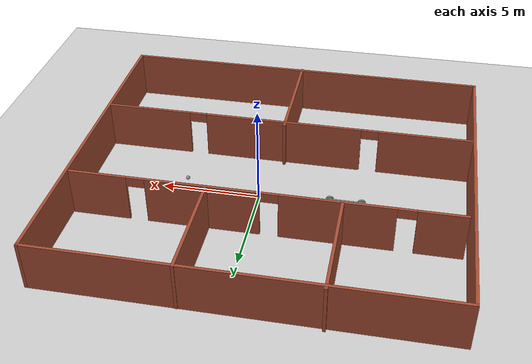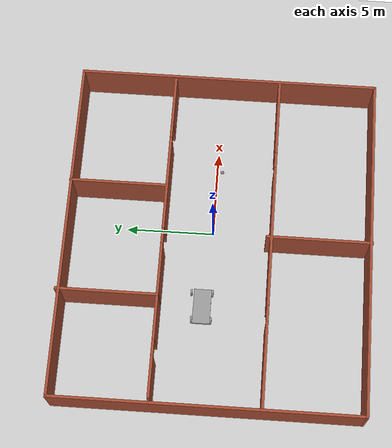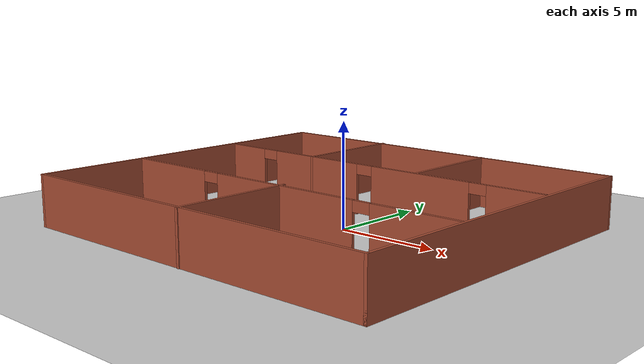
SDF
<sdf version="1.6">
 <world name="default">
  <plugin name="hello" filename="libhello.so"/>
  <light name="sun" type="directional">
   <pose>0 0 10 0 -0 0</pose>
   <diffuse>0.8 0.8 0.8 1</diffuse>
   <specular>0.2 0.2 0.2 1</specular>
   <attenuation>
    <range>1000</range>
    <constant>0.9</constant>
    <linear>0.01</linear>
    <quadratic>0.001</quadratic>
   </attenuation>
   <direction>-0.5 0.1 -0.9</direction>
  </light>
  <model name="ground_plane">
   <static>1</static>
   <link name="link">
    <collision name="collision">
     <geometry><plane><normal>0 0 1</normal><size>100 100</size></plane></geometry>
     <surface>
      <contact><collide_bitmask>65535</collide_bitmask></contact>
      <friction><ode><mu>100</mu><mu2>50</mu2></ode></friction>
     </surface>
    </collision>
    <visual name="visual">
     <cast_shadows>0</cast_shadows>
     <geometry><plane><normal>0 0 1</normal><size>100 100</size></plane></geometry>
     <material>
      <script><uri>file://media/materials/scripts/gazebo.material</uri><name>Gazebo/Grey</name></script>
     </material>
    </visual>
   </link>
  </model>
  <gravity>0 0 -9.8</gravity>
  <magnetic_field>6e-06 2.3e-05 -4.2e-05</magnetic_field>
  <atmosphere type="adiabatic"/>
  <physics name="default_physics" default="0" type="ode">
   <max_step_size>0.001</max_step_size>
   <real_time_factor>1</real_time_factor>
   <real_time_update_rate>1000</real_time_update_rate>
  </physics>
  <scene><ambient>0.4 0.4 0.4 1</ambient><background>0.7 0.7 0.7 1</background><shadows>1</shadows></scene>
  <spherical_coordinates>
   <surface_model>EARTH_WGS84</surface_model>
   <latitude_deg>0</latitude_deg>
   <longitude_deg>0</longitude_deg>
   <elevation>0</elevation>
   <heading_deg>0</heading_deg>
  </spherical_coordinates>
  <model name="Building">
   <pose>-0.815891 -0.27075 0 0 -0 0</pose>
   <link name="Wall_11">
    <collision name="Wall_11_Collision">
     <geometry><box><size>19.5 0.15 2.5</size></box></geometry>
     <pose>0 0 1.25 0 -0 0</pose>
    </collision>
    <visual name="Wall_11_Visual">
     <pose>0 0 1.25 0 -0 0</pose>
     <geometry><box><size>19.5 0.15 2.5</size></box></geometry>
     <material>
      <script><uri>file://media/materials/scripts/gazebo.material</uri><name>Gazebo/Bricks</name></script>
      <ambient>1 1 1 1</ambient>
     </material>
     <meta><layer>0</layer></meta>
    </visual>
    <pose>0 8.49662 0 0 -0 3.14159</pose>
   </link>
   <link name="Wall_14">
    <collision name="Wall_14_Collision">
     <geometry><box><size>17.25 0.15 2.5</size></box></geometry>
     <pose>0 0 1.25 0 -0 0</pose>
    </collision>
    <visual name="Wall_14_Visual">
     <pose>0 0 1.25 0 -0 0</pose>
     <geometry><box><size>17.25 0.15 2.5</size></box></geometry>
     <material>
      <script><uri>file://media/materials/scripts/gazebo.material</uri><name>Gazebo/Bricks</name></script>
      <ambient>1 1 1 1</ambient>
     </material>
     <meta><layer>0</layer></meta>
    </visual>
    <pose>-9.675 -0.053382 0 0 -0 1.5708</pose>
   </link>
   <link name="Wall_16">
    <pose>0.002951 -3.04368 0 0 -0 0</pose>
    <visual name="Wall_16_Visual_0">
     <pose>-7.22833 0 1.25 0 -0 0</pose>
     <geometry><box><size>4.79334 0.15 2.5</size></box></geometry>
     <material>
      <script><uri>file://media/materials/scripts/gazebo.material</uri><name>Gazebo/Bricks</name></script>
      <ambient>1 1 1 1</ambient>
     </material>
     <meta><layer>0</layer></meta>
    </visual>
    <collision name="Wall_16_Collision_0">
     <geometry><box><size>4.79334 0.15 2.5</size></box></geometry>
     <pose>-7.22833 0 1.25 0 -0 0</pose>
    </collision>
    <visual name="Wall_16_Visual_1">
     <pose>0.171405 0 1.25 0 -0 0</pose>
     <geometry><box><size>8.20613 0.15 2.5</size></box></geometry>
     <material>
      <script><uri>file://media/materials/scripts/gazebo.material</uri><name>Gazebo/Bricks</name></script>
      <ambient>1 1 1 1</ambient>
     </material>
     <meta><layer>0</layer></meta>
    </visual>
    <collision name="Wall_16_Collision_1">
     <geometry><box><size>8.20613 0.15 2.5</size></box></geometry>
     <pose>0.171405 0 1.25 0 -0 0</pose>
    </collision>
    <visual name="Wall_16_Visual_2">
     <pose>7.39973 0 1.25 0 -0 0</pose>
     <geometry><box><size>4.45053 0.15 2.5</size></box></geometry>
     <material>
      <script><uri>file://media/materials/scripts/gazebo.material</uri><name>Gazebo/Bricks</name></script>
      <ambient>1 1 1 1</ambient>
     </material>
     <meta><layer>0</layer></meta>
    </visual>
    <collision name="Wall_16_Collision_2">
     <geometry><box><size>4.45053 0.15 2.5</size></box></geometry>
     <pose>7.39973 0 1.25 0 -0 0</pose>
    </collision>
    <visual name="Wall_16_Visual_3">
     <pose>-4.38166 0 2.25 0 -0 0</pose>
     <geometry><box><size>0.9 0.15 0.5</size></box></geometry>
     <material>
      <script><uri>file://media/materials/scripts/gazebo.material</uri><name>Gazebo/Bricks</name></script>
      <ambient>1 1 1 1</ambient>
     </material>
     <meta><layer>0</layer></meta>
    </visual>
    <collision name="Wall_16_Collision_3">
     <geometry><box><size>0.9 0.15 0.5</size></box></geometry>
     <pose>-4.38166 0 2.25 0 -0 0</pose>
    </collision>
    <visual name="Wall_16_Visual_4">
     <pose>4.72447 0 2.25 0 -0 0</pose>
     <geometry><box><size>0.9 0.15 0.5</size></box></geometry>
     <material>
      <script><uri>file://media/materials/scripts/gazebo.material</uri><name>Gazebo/Bricks</name></script>
      <ambient>1 1 1 1</ambient>
     </material>
     <meta><layer>0</layer></meta>
    </visual>
    <collision name="Wall_16_Collision_4">
     <geometry><box><size>0.9 0.15 0.5</size></box></geometry>
     <pose>4.72447 0 2.25 0 -0 0</pose>
    </collision>
   </link>
   <link name="Wall_18">
    <pose>0.062534 3.04758 0 0 -0 0</pose>
    <visual name="Wall_18_Visual_0">
     <pose>-8.33389 0 1.25 0 -0 0</pose>
     <geometry><box><size>2.33223 0.15 2.5</size></box></geometry>
     <material>
      <script><uri>file://media/materials/scripts/gazebo.material</uri><name>Gazebo/Bricks</name></script>
      <ambient>1 1 1 1</ambient>
     </material>
     <meta><layer>0</layer></meta>
    </visual>
    <collision name="Wall_18_Collision_0">
     <geometry><box><size>2.33223 0.15 2.5</size></box></geometry>
     <pose>-8.33389 0 1.25 0 -0 0</pose>
    </collision>
    <visual name="Wall_18_Visual_1">
     <pose>-3.51832 0 1.25 0 -0 0</pose>
     <geometry><box><size>5.4989 0.15 2.5</size></box></geometry>
     <material>
      <script><uri>file://media/materials/scripts/gazebo.material</uri><name>Gazebo/Bricks</name></script>
      <ambient>1 1 1 1</ambient>
     </material>
     <meta><layer>0</layer></meta>
    </visual>
    <collision name="Wall_18_Collision_1">
     <geometry><box><size>5.4989 0.15 2.5</size></box></geometry>
     <pose>-3.51832 0 1.25 0 -0 0</pose>
    </collision>
    <visual name="Wall_18_Visual_2">
     <pose>2.91134 0 1.25 0 -0 0</pose>
     <geometry><box><size>5.56043 0.15 2.5</size></box></geometry>
     <material>
      <script><uri>file://media/materials/scripts/gazebo.material</uri><name>Gazebo/Bricks</name></script>
      <ambient>1 1 1 1</ambient>
     </material>
     <meta><layer>0</layer></meta>
    </visual>
    <collision name="Wall_18_Collision_2">
     <geometry><box><size>5.56043 0.15 2.5</size></box></geometry>
     <pose>2.91134 0 1.25 0 -0 0</pose>
    </collision>
    <visual name="Wall_18_Visual_3">
     <pose>8.04578 0 1.25 0 -0 0</pose>
     <geometry><box><size>2.90845 0.15 2.5</size></box></geometry>
     <material>
      <script><uri>file://media/materials/scripts/gazebo.material</uri><name>Gazebo/Bricks</name></script>
      <ambient>1 1 1 1</ambient>
     </material>
     <meta><layer>0</layer></meta>
    </visual>
    <collision name="Wall_18_Collision_3">
     <geometry><box><size>2.90845 0.15 2.5</size></box></geometry>
     <pose>8.04578 0 1.25 0 -0 0</pose>
    </collision>
    <visual name="Wall_18_Visual_4">
     <pose>-6.71777 0 2.25 0 -0 0</pose>
     <geometry><box><size>0.9 0.15 0.5</size></box></geometry>
     <material>
      <script><uri>file://media/materials/scripts/gazebo.material</uri><name>Gazebo/Bricks</name></script>
      <ambient>1 1 1 1</ambient>
     </material>
     <meta><layer>0</layer></meta>
    </visual>
    <collision name="Wall_18_Collision_4">
     <geometry><box><size>0.9 0.15 0.5</size></box></geometry>
     <pose>-6.71777 0 2.25 0 -0 0</pose>
    </collision>
    <visual name="Wall_18_Visual_5">
     <pose>-0.318874 0 2.25 0 -0 0</pose>
     <geometry><box><size>0.9 0.15 0.5</size></box></geometry>
     <material>
      <script><uri>file://media/materials/scripts/gazebo.material</uri><name>Gazebo/Bricks</name></script>
      <ambient>1 1 1 1</ambient>
     </material>
     <meta><layer>0</layer></meta>
    </visual>
    <collision name="Wall_18_Collision_5">
     <geometry><box><size>0.9 0.15 0.5</size></box></geometry>
     <pose>-0.318874 0 2.25 0 -0 0</pose>
    </collision>
    <visual name="Wall_18_Visual_6">
     <pose>6.14155 0 2.25 0 -0 0</pose>
     <geometry><box><size>0.9 0.15 0.5</size></box></geometry>
     <material>
      <script><uri>file://media/materials/scripts/gazebo.material</uri><name>Gazebo/Bricks</name></script>
      <ambient>1 1 1 1</ambient>
     </material>
     <meta><layer>0</layer></meta>
    </visual>
    <collision name="Wall_18_Collision_6">
     <geometry><box><size>0.9 0.15 0.5</size></box></geometry>
     <pose>6.14155 0 2.25 0 -0 0</pose>
    </collision>
   </link>
   <link name="Wall_20">
    <collision name="Wall_20_Collision">
     <geometry><box><size>6 0.15 2.5</size></box></geometry>
     <pose>0 0 1.25 0 -0 0</pose>
    </collision>
    <visual name="Wall_20_Visual">
     <pose>0 0 1.25 0 -0 0</pose>
     <geometry><box><size>6 0.15 2.5</size></box></geometry>
     <material>
      <script><uri>file://media/materials/scripts/gazebo.material</uri><name>Gazebo/Bricks</name></script>
      <ambient>1 1 1 1</ambient>
     </material>
     <meta><layer>0</layer></meta>
    </visual>
    <pose>0.0513 -5.72257 0 0 0 -1.5708</pose>
   </link>
   <link name="Wall_24">
    <collision name="Wall_24_Collision">
     <geometry><box><size>5.5 0.15 2.5</size></box></geometry>
     <pose>0 0 1.25 0 -0 0</pose>
    </collision>
    <visual name="Wall_24_Visual">
     <pose>0 0 1.25 0 -0 0</pose>
     <geometry><box><size>5.5 0.15 2.5</size></box></geometry>
     <material>
      <script><uri>file://media/materials/scripts/gazebo.material</uri><name>Gazebo/Bricks</name></script>
      <ambient>1 1 1 1</ambient>
     </material>
     <meta><layer>0</layer></meta>
    </visual>
    <pose>2.75853 5.84563 0 0 -0 1.5708</pose>
   </link>
   <link name="Wall_26">
    <collision name="Wall_26_Collision">
     <geometry><box><size>5.75 0.15 2.5</size></box></geometry>
     <pose>0 0 1.25 0 -0 0</pose>
    </collision>
    <visual name="Wall_26_Visual">
     <pose>0 0 1.25 0 -0 0</pose>
     <geometry><box><size>5.75 0.15 2.5</size></box></geometry>
     <material>
      <script><uri>file://media/materials/scripts/gazebo.material</uri><name>Gazebo/Bricks</name></script>
      <ambient>1 1 1 1</ambient>
     </material>
     <meta><layer>0</layer></meta>
    </visual>
    <pose>-3.7019 5.84757 0 0 -0 1.5708</pose>
   </link>
   <link name="Wall_7">
    <collision name="Wall_7_Collision">
     <geometry><box><size>19.5 0.15 2.5</size></box></geometry>
     <pose>0 0 1.25 0 -0 0</pose>
    </collision>
    <visual name="Wall_7_Visual">
     <pose>0 0 1.25 0 -0 0</pose>
     <geometry><box><size>19.5 0.15 2.5</size></box></geometry>
     <material>
      <script><uri>file://media/materials/scripts/gazebo.material</uri><name>Gazebo/Bricks</name></script>
      <ambient>1 1 1 1</ambient>
     </material>
     <meta><layer>0</layer></meta>
    </visual>
    <pose>0 -8.60338 0 0 -0 0</pose>
   </link>
   <link name="Wall_9">
    <collision name="Wall_9_Collision">
     <geometry><box><size>17.25 0.15 2.5</size></box></geometry>
     <pose>0 0 1.25 0 -0 0</pose>
    </collision>
    <visual name="Wall_9_Visual">
     <pose>0 0 1.25 0 -0 0</pose>
     <geometry><box><size>17.25 0.15 2.5</size></box></geometry>
     <material>
      <script><uri>file://media/materials/scripts/gazebo.material</uri><name>Gazebo/Bricks</name></script>
      <ambient>1 1 1 1</ambient>
     </material>
     <meta><layer>0</layer></meta>
    </visual>
    <pose>9.675 -0.053382 0 0 -0 1.5708</pose>
   </link>
   <static>1</static>
  </model>
  <model name="instance2">
   <link name="link_1">
    <pose>0 -0.018 0 0 -0 0</pose>
    <inertial>
     <mass>1</mass>
     <inertia>
      <ixx>0.166667</ixx>
      <ixy>0</ixy>
      <ixz>0</ixz>
      <iyy>0.166667</iyy>
      <iyz>0</iyz>
      <izz>0.166667</izz>
     </inertia>
    </inertial>
    <visual name="visual">
     <geometry><box><size>2 1 0.2</size></box></geometry>
     <material>
      <lighting>1</lighting>
      <script><uri>file://media/materials/scripts/gazebo.material</uri><name>Gazebo/Grey</name></script>
      <shader type="pixel"><normal_map>__default__</normal_map></shader>
      <ambient>0.3 0.3 0.3 1</ambient>
      <diffuse>0.7 0.7 0.7 1</diffuse>
      <specular>0.01 0.01 0.01 1</specular>
      <emissive>0 0 0 1</emissive>
     </material>
    </visual>
    <collision name="collision">
     <geometry><box><size>2 1 0.2</size></box></geometry>
     <surface>
      <friction>
       <ode><mu>1</mu><mu2>1</mu2><fdir1>0 0 0</fdir1><slip1>0</slip1><slip2>0</slip2></ode>
       <torsional>
        <coefficient>1</coefficient>
        <patch_radius>0</patch_radius>
        <surface_radius>0</surface_radius>
        <use_patch_radius>1</use_patch_radius>
        <ode><slip>0</slip></ode>
       </torsional>
      </friction>
      <bounce><restitution_coefficient>0</restitution_coefficient><threshold>1e+06</threshold></bounce>
      <contact>
       <collide_without_contact>0</collide_without_contact>
       <collide_without_contact_bitmask>1</collide_without_contact_bitmask>
       <collide_bitmask>1</collide_bitmask>
       <ode>
        <soft_cfm>0</soft_cfm>
        <soft_erp>0.2</soft_erp>
        <kp>1e+13</kp>
        <kd>1</kd>
        <max_vel>0.01</max_vel>
        <min_depth>0</min_depth>
       </ode>
       <bullet>
        <split_impulse>1</split_impulse>
        <split_impulse_penetration_threshold>-0.01</split_impulse_penetration_threshold>
        <soft_cfm>0</soft_cfm>
        <soft_erp>0.2</soft_erp>
        <kp>1e+13</kp>
        <kd>1</kd>
       </bullet>
      </contact>
     </surface>
    </collision>
   </link>
   <link name="link_3">
    <pose>0.8 0.622019 0 1.5707 -0 0</pose>
    <inertial>
     <mass>1</mass>
     <inertia><ixx>0.145833</ixx><ixy>0</ixy><ixz>0</ixz><iyy>0.145833</iyy><iyz>0</iyz><izz>0.125</izz></inertia>
    </inertial>
    <visual name="visual">
     <geometry><cylinder><radius>0.2</radius><length>0.1</length></cylinder></geometry>
     <material>
      <lighting>1</lighting>
      <script><uri>file://media/materials/scripts/gazebo.material</uri><name>Gazebo/Grey</name></script>
      <shader type="pixel"><normal_map>__default__</normal_map></shader>
      <ambient>0.3 0.3 0.3 1</ambient>
      <diffuse>0.7 0.7 0.7 1</diffuse>
      <specular>0.01 0.01 0.01 1</specular>
      <emissive>0 0 0 1</emissive>
     </material>
    </visual>
    <collision name="collision">
     <geometry><cylinder><radius>0.2</radius><length>0.1</length></cylinder></geometry>
     <surface>
      <friction>
       <ode><mu>1</mu><mu2>1</mu2><fdir1>0 0 0</fdir1><slip1>0</slip1><slip2>0</slip2></ode>
       <torsional>
        <coefficient>1</coefficient>
        <patch_radius>0</patch_radius>
        <surface_radius>0</surface_radius>
        <use_patch_radius>1</use_patch_radius>
        <ode><slip>0</slip></ode>
       </torsional>
      </friction>
      <bounce><restitution_coefficient>0</restitution_coefficient><threshold>1e+06</threshold></bounce>
      <contact>
       <collide_without_contact>0</collide_without_contact>
       <collide_without_contact_bitmask>1</collide_without_contact_bitmask>
       <collide_bitmask>1</collide_bitmask>
       <ode>
        <soft_cfm>0</soft_cfm>
        <soft_erp>0.2</soft_erp>
        <kp>1e+13</kp>
        <kd>1</kd>
        <max_vel>0.01</max_vel>
        <min_depth>0</min_depth>
       </ode>
       <bullet>
        <split_impulse>1</split_impulse>
        <split_impulse_penetration_threshold>-0.01</split_impulse_penetration_threshold>
        <soft_cfm>0</soft_cfm>
        <soft_erp>0.2</soft_erp>
        <kp>1e+13</kp>
        <kd>1</kd>
       </bullet>
      </contact>
     </surface>
    </collision>
   </link>
   <link name="link_3_clone">
    <pose>0.8 -0.568019 0 1.5707 -0 0</pose>
    <inertial>
     <mass>1</mass>
     <inertia><ixx>0.145833</ixx><ixy>0</ixy><ixz>0</ixz><iyy>0.145833</iyy><iyz>0</iyz><izz>0.125</izz></inertia>
    </inertial>
    <visual name="visual">
     <geometry><cylinder><radius>0.2</radius><length>0.1</length></cylinder></geometry>
     <material>
      <lighting>1</lighting>
      <script><uri>file://media/materials/scripts/gazebo.material</uri><name>Gazebo/Grey</name></script>
      <shader type="pixel"><normal_map>__default__</normal_map></shader>
      <ambient>0.3 0.3 0.3 1</ambient>
      <diffuse>0.7 0.7 0.7 1</diffuse>
      <specular>0.01 0.01 0.01 1</specular>
      <emissive>0 0 0 1</emissive>
     </material>
    </visual>
    <collision name="collision">
     <geometry><cylinder><radius>0.2</radius><length>0.1</length></cylinder></geometry>
     <surface>
      <friction>
       <ode><mu>1</mu><mu2>1</mu2><fdir1>0 0 0</fdir1><slip1>0</slip1><slip2>0</slip2></ode>
       <torsional>
        <coefficient>1</coefficient>
        <patch_radius>0</patch_radius>
        <surface_radius>0</surface_radius>
        <use_patch_radius>1</use_patch_radius>
        <ode><slip>0</slip></ode>
       </torsional>
      </friction>
      <bounce><restitution_coefficient>0</restitution_coefficient><threshold>1e+06</threshold></bounce>
      <contact>
       <collide_without_contact>0</collide_without_contact>
       <collide_without_contact_bitmask>1</collide_without_contact_bitmask>
       <collide_bitmask>1</collide_bitmask>
       <ode>
        <soft_cfm>0</soft_cfm>
        <soft_erp>0.2</soft_erp>
        <kp>1e+13</kp>
        <kd>1</kd>
        <max_vel>0.01</max_vel>
        <min_depth>0</min_depth>
       </ode>
       <bullet>
        <split_impulse>1</split_impulse>
        <split_impulse_penetration_threshold>-0.01</split_impulse_penetration_threshold>
        <soft_cfm>0</soft_cfm>
        <soft_erp>0.2</soft_erp>
        <kp>1e+13</kp>
        <kd>1</kd>
       </bullet>
      </contact>
     </surface>
    </collision>
   </link>
   <link name="link_3_clone_0">
    <pose>-0.8 0.532019 0 1.5707 -0 0</pose>
    <inertial>
     <mass>1</mass>
     <inertia><ixx>0.145833</ixx><ixy>0</ixy><ixz>0</ixz><iyy>0.145833</iyy><iyz>0</iyz><izz>0.125</izz></inertia>
    </inertial>
    <visual name="visual">
     <geometry><cylinder><radius>0.2</radius><length>0.1</length></cylinder></geometry>
     <material>
      <lighting>1</lighting>
      <script><uri>file://media/materials/scripts/gazebo.material</uri><name>Gazebo/Grey</name></script>
      <shader type="pixel"><normal_map>__default__</normal_map></shader>
      <ambient>0.3 0.3 0.3 1</ambient>
      <diffuse>0.7 0.7 0.7 1</diffuse>
      <specular>0.01 0.01 0.01 1</specular>
      <emissive>0 0 0 1</emissive>
     </material>
    </visual>
    <collision name="collision">
     <geometry><cylinder><radius>0.2</radius><length>0.1</length></cylinder></geometry>
     <surface>
      <friction>
       <ode><mu>1</mu><mu2>1</mu2><fdir1>0 0 0</fdir1><slip1>0</slip1><slip2>0</slip2></ode>
       <torsional>
        <coefficient>1</coefficient>
        <patch_radius>0</patch_radius>
        <surface_radius>0</surface_radius>
        <use_patch_radius>1</use_patch_radius>
        <ode><slip>0</slip></ode>
       </torsional>
      </friction>
      <bounce><restitution_coefficient>0</restitution_coefficient><threshold>1e+06</threshold></bounce>
      <contact>
       <collide_without_contact>0</collide_without_contact>
       <collide_without_contact_bitmask>1</collide_without_contact_bitmask>
       <collide_bitmask>1</collide_bitmask>
       <ode>
        <soft_cfm>0</soft_cfm>
        <soft_erp>0.2</soft_erp>
        <kp>1e+13</kp>
        <kd>1</kd>
        <max_vel>0.01</max_vel>
        <min_depth>0</min_depth>
       </ode>
       <bullet>
        <split_impulse>1</split_impulse>
        <split_impulse_penetration_threshold>-0.01</split_impulse_penetration_threshold>
        <soft_cfm>0</soft_cfm>
        <soft_erp>0.2</soft_erp>
        <kp>1e+13</kp>
        <kd>1</kd>
       </bullet>
      </contact>
     </surface>
    </collision>
   </link>
   <link name="link_3_clone_1">
    <pose>-0.8 -0.568019 0 1.5707 -0 0</pose>
    <inertial>
     <mass>1</mass>
     <inertia><ixx>0.145833</ixx><ixy>0</ixy><ixz>0</ixz><iyy>0.145833</iyy><iyz>0</iyz><izz>0.125</izz></inertia>
    </inertial>
    <visual name="visual">
     <geometry><cylinder><radius>0.2</radius><length>0.1</length></cylinder></geometry>
     <material>
      <lighting>1</lighting>
      <script><uri>file://media/materials/scripts/gazebo.material</uri><name>Gazebo/Grey</name></script>
      <shader type="pixel"><normal_map>__default__</normal_map></shader>
      <ambient>0.3 0.3 0.3 1</ambient>
      <diffuse>0.7 0.7 0.7 1</diffuse>
      <specular>0.01 0.01 0.01 1</specular>
      <emissive>0 0 0 1</emissive>
     </material>
    </visual>
    <collision name="collision">
     <geometry><cylinder><radius>0.2</radius><length>0.1</length></cylinder></geometry>
     <surface>
      <friction>
       <ode><mu>1</mu><mu2>1</mu2><fdir1>0 0 0</fdir1><slip1>0</slip1><slip2>0</slip2></ode>
       <torsional>
        <coefficient>1</coefficient>
        <patch_radius>0</patch_radius>
        <surface_radius>0</surface_radius>
        <use_patch_radius>1</use_patch_radius>
        <ode><slip>0</slip></ode>
       </torsional>
      </friction>
      <bounce><restitution_coefficient>0</restitution_coefficient><threshold>1e+06</threshold></bounce>
      <contact>
       <collide_without_contact>0</collide_without_contact>
       <collide_without_contact_bitmask>1</collide_without_contact_bitmask>
       <collide_bitmask>1</collide_bitmask>
       <ode>
        <soft_cfm>0</soft_cfm>
        <soft_erp>0.2</soft_erp>
        <kp>1e+13</kp>
        <kd>1</kd>
        <max_vel>0.01</max_vel>
        <min_depth>0</min_depth>
       </ode>
       <bullet>
        <split_impulse>1</split_impulse>
        <split_impulse_penetration_threshold>-0.01</split_impulse_penetration_threshold>
        <soft_cfm>0</soft_cfm>
        <soft_erp>0.2</soft_erp>
        <kp>1e+13</kp>
        <kd>1</kd>
       </bullet>
      </contact>
     </surface>
    </collision>
   </link>
   <joint name="link_1_JOINT_0" type="revolute">
    <parent>link_1</parent>
    <child>link_3_clone_1</child>
    <axis>
     <xyz>0 0 1</xyz>
     <use_parent_model_frame>0</use_parent_model_frame>
     <limit>
      <lower>-1.79769e+308</lower>
      <upper>1.79769e+308</upper>
      <effort>-1</effort>
      <velocity>-1</velocity>
     </limit>
     <dynamics>
      <spring_reference>0</spring_reference>
      <spring_stiffness>0</spring_stiffness>
      <damping>0</damping>
     </dynamics>
    </axis>
    <physics>
     <ode><limit><cfm>0</cfm><erp>0.2</erp></limit><suspension><cfm>0</cfm><erp>0.2</erp></suspension></ode>
    </physics>
   </joint>
   <joint name="link_1_JOINT_1" type="revolute">
    <parent>link_1</parent>
    <child>link_3_clone_0</child>
    <axis>
     <xyz>0 0 1</xyz>
     <use_parent_model_frame>0</use_parent_model_frame>
     <limit>
      <lower>-1.79769e+308</lower>
      <upper>1.79769e+308</upper>
      <effort>-1</effort>
      <velocity>-1</velocity>
     </limit>
     <dynamics>
      <spring_reference>0</spring_reference>
      <spring_stiffness>0</spring_stiffness>
      <damping>0</damping>
     </dynamics>
    </axis>
    <physics>
     <ode><limit><cfm>0</cfm><erp>0.2</erp></limit><suspension><cfm>0</cfm><erp>0.2</erp></suspension></ode>
    </physics>
   </joint>
   <joint name="link_1_JOINT_2" type="revolute">
    <parent>link_1</parent>
    <child>link_3</child>
    <axis>
     <xyz>0 0 1</xyz>
     <use_parent_model_frame>0</use_parent_model_frame>
     <limit>
      <lower>-1.79769e+308</lower>
      <upper>1.79769e+308</upper>
      <effort>-1</effort>
      <velocity>-1</velocity>
     </limit>
     <dynamics>
      <spring_reference>0</spring_reference>
      <spring_stiffness>0</spring_stiffness>
      <damping>0</damping>
     </dynamics>
    </axis>
    <physics>
     <ode><limit><cfm>0</cfm><erp>0.2</erp></limit><suspension><cfm>0</cfm><erp>0.2</erp></suspension></ode>
    </physics>
   </joint>
   <joint name="link_1_JOINT_3" type="revolute">
    <parent>link_1</parent>
    <child>link_3_clone</child>
    <axis>
     <xyz>0 0 1</xyz>
     <use_parent_model_frame>0</use_parent_model_frame>
     <limit>
      <lower>-1.79769e+308</lower>
      <upper>1.79769e+308</upper>
      <effort>-1</effort>
      <velocity>-1</velocity>
     </limit>
     <dynamics>
      <spring_reference>0</spring_reference>
      <spring_stiffness>0</spring_stiffness>
      <damping>0</damping>
     </dynamics>
    </axis>
    <physics>
     <ode><limit><cfm>0</cfm><erp>0.2</erp></limit><suspension><cfm>0</cfm><erp>0.2</erp></suspension></ode>
    </physics>
   </joint>
   <static>0</static>
   <pose>-4.41646 0.378684 0.200005 1e-06 -0 -0.002397</pose>
  </model>
  <model name="balll">
   <link name="link_0">
    <inertial>
     <mass>1</mass>
     <inertia><ixx>0.1</ixx><ixy>0</ixy><ixz>0</ixz><iyy>0.1</iyy><iyz>0</iyz><izz>0.1</izz></inertia>
     <pose>0 0 0.1 0 -0 0</pose>
    </inertial>
    <visual name="visual">
     <geometry><sphere><radius>0.1</radius></sphere></geometry>
     <material>
      <lighting>1</lighting>
      <script><uri>file://media/materials/scripts/gazebo.material</uri><name>Gazebo/Grey</name></script>
      <shader type="pixel"><normal_map>__default__</normal_map></shader>
      <ambient>1 1 1 1</ambient>
      <diffuse>1 1 1 1</diffuse>
      <specular>1 1 1 1</specular>
      <emissive>0 0 0 1</emissive>
     </material>
    </visual>
    <collision name="collision">
     <geometry><sphere><radius>0.1</radius></sphere></geometry>
     <surface>
      <friction>
       <ode><mu>1</mu><mu2>1</mu2><fdir1>0 0 0</fdir1><slip1>0</slip1><slip2>0</slip2></ode>
       <torsional>
        <coefficient>1</coefficient>
        <patch_radius>0</patch_radius>
        <surface_radius>0</surface_radius>
        <use_patch_radius>1</use_patch_radius>
        <ode><slip>0</slip></ode>
       </torsional>
      </friction>
      <bounce><restitution_coefficient>0</restitution_coefficient><threshold>1e+06</threshold></bounce>
      <contact>
       <collide_without_contact>0</collide_without_contact>
       <collide_without_contact_bitmask>1</collide_without_contact_bitmask>
       <collide_bitmask>1</collide_bitmask>
       <ode>
        <soft_cfm>0</soft_cfm>
        <soft_erp>0.2</soft_erp>
        <kp>1e+13</kp>
        <kd>1</kd>
        <max_vel>0.01</max_vel>
        <min_depth>0</min_depth>
       </ode>
       <bullet>
        <split_impulse>1</split_impulse>
        <split_impulse_penetration_threshold>-0.01</split_impulse_penetration_threshold>
        <soft_cfm>0</soft_cfm>
        <soft_erp>0.2</soft_erp>
        <kp>1e+13</kp>
        <kd>1</kd>
       </bullet>
      </contact>
     </surface>
    </collision>
   </link>
   <static>0</static>
   <pose>3.75452 -0.271896 0.5 0 -0 0</pose>
  </model>
 </world>
</sdf>
